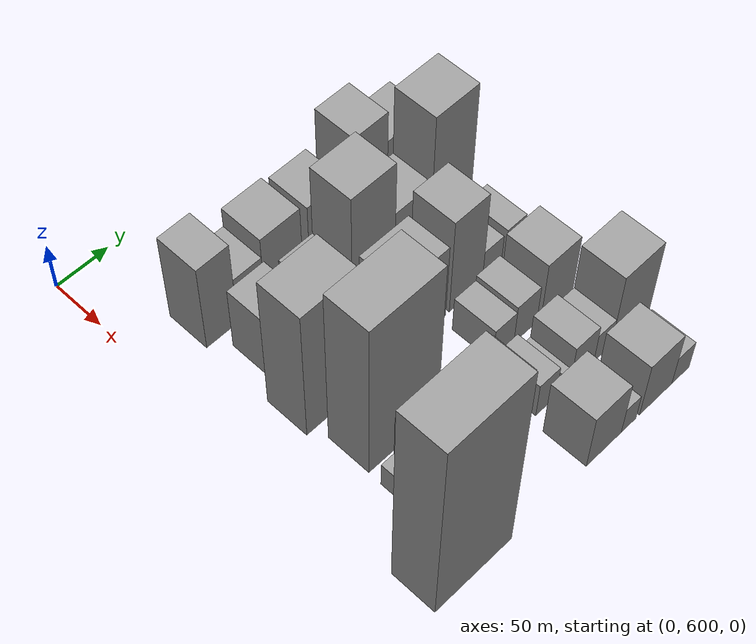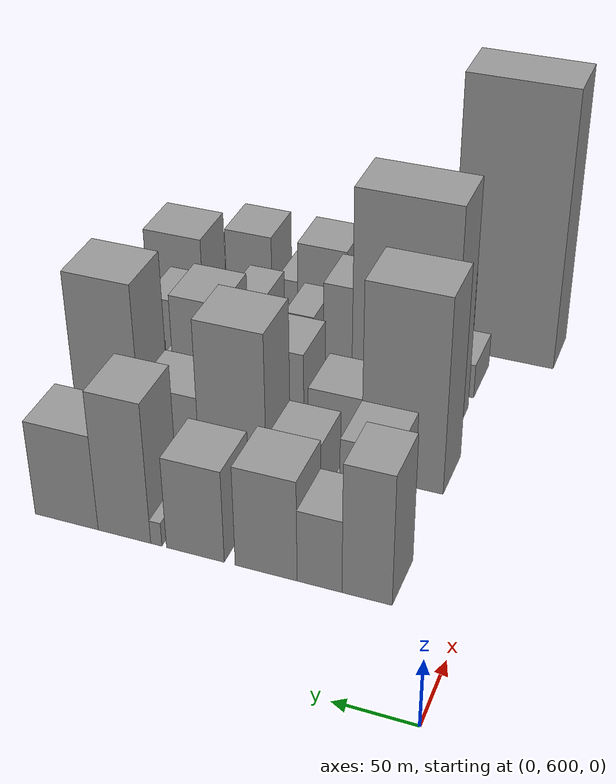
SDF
<sdf version="1.6">
 <world name="default">
  <model name="building_41">
   <static>1</static>
   <pose>100.0000 656.6407 0 0.000000 0.000000 0.000000</pose>
   <link name="link">
    <pose>0 0 48.00 0 0 0</pose>
    <collision name="collision"><geometry><box><size>40.0000 30.6110 96.0000</size></box></geometry></collision>
    <visual name="visual">
     <cast_shadows>0</cast_shadows>
     <geometry><box><size>40.0000 30.6110 96.0000</size></box></geometry>
     <material>
      <script>
       <uri>model://grey_wall/materials/scripts</uri>
       <uri>model://grey_wall/materials/textures</uri>
       <name>vrc/grey_wall</name>
      </script>
     </material>
    </visual>
   </link>
  </model>
  <model name="building_42">
   <static>1</static>
   <pose>100.0000 685.8209 0 0.000000 0.000000 0.000000</pose>
   <link name="link">
    <pose>0 0 27.00 0 0 0</pose>
    <collision name="collision"><geometry><box><size>40.0000 27.7494 54.0000</size></box></geometry></collision>
    <visual name="visual">
     <cast_shadows>0</cast_shadows>
     <geometry><box><size>40.0000 27.7494 54.0000</size></box></geometry>
     <material>
      <script>
       <uri>model://grey_wall/materials/scripts</uri>
       <uri>model://grey_wall/materials/textures</uri>
       <name>vrc/grey_wall</name>
      </script>
     </material>
    </visual>
   </link>
  </model>
  <model name="building_43">
   <static>1</static>
   <pose>100.0000 719.2941 0 0.000000 0.000000 0.000000</pose>
   <link name="link">
    <pose>0 0 37.50 0 0 0</pose>
    <collision name="collision"><geometry><box><size>40.0000 39.1970 75.0000</size></box></geometry></collision>
    <visual name="visual">
     <cast_shadows>0</cast_shadows>
     <geometry><box><size>40.0000 39.1970 75.0000</size></box></geometry>
     <material>
      <script>
       <uri>model://grey_wall/materials/scripts</uri>
       <uri>model://grey_wall/materials/textures</uri>
       <name>vrc/grey_wall</name>
      </script>
     </material>
    </visual>
   </link>
  </model>
  <model name="building_44">
   <static>1</static>
   <pose>100.0000 764.7186 0 0.000000 0.000000 0.000000</pose>
   <link name="link">
    <pose>0 0 34.50 0 0 0</pose>
    <collision name="collision"><geometry><box><size>40.0000 37.6518 69.0000</size></box></geometry></collision>
    <visual name="visual">
     <cast_shadows>0</cast_shadows>
     <geometry><box><size>40.0000 37.6518 69.0000</size></box></geometry>
     <material>
      <script>
       <uri>model://grey_wall/materials/scripts</uri>
       <uri>model://grey_wall/materials/textures</uri>
       <name>vrc/grey_wall</name>
      </script>
     </material>
    </visual>
   </link>
  </model>
  <model name="building_45">
   <static>1</static>
   <pose>100.0000 790.2598 0 0.000000 0.000000 0.000000</pose>
   <link name="link">
    <pose>0 0 9.00 0 0 0</pose>
    <collision name="collision"><geometry><box><size>40.0000 7.4306 18.0000</size></box></geometry></collision>
    <visual name="visual">
     <cast_shadows>0</cast_shadows>
     <geometry><box><size>40.0000 7.4306 18.0000</size></box></geometry>
     <material>
      <script>
       <uri>model://grey_wall/materials/scripts</uri>
       <uri>model://grey_wall/materials/textures</uri>
       <name>vrc/grey_wall</name>
      </script>
     </material>
    </visual>
   </link>
  </model>
  <model name="building_46">
   <static>1</static>
   <pose>100.0000 811.5840 0 0.000000 0.000000 0.000000</pose>
   <link name="link">
    <pose>0 0 52.50 0 0 0</pose>
    <collision name="collision"><geometry><box><size>40.0000 35.2179 105.0000</size></box></geometry></collision>
    <visual name="visual">
     <cast_shadows>0</cast_shadows>
     <geometry><box><size>40.0000 35.2179 105.0000</size></box></geometry>
     <material>
      <script>
       <uri>model://grey_wall/materials/scripts</uri>
       <uri>model://grey_wall/materials/textures</uri>
       <name>vrc/grey_wall</name>
      </script>
     </material>
    </visual>
   </link>
  </model>
  <model name="building_47">
   <static>1</static>
   <pose>100.0000 850.7482 0 0.000000 0.000000 0.000000</pose>
   <link name="link">
    <pose>0 0 36.00 0 0 0</pose>
    <collision name="collision"><geometry><box><size>40.0000 43.1106 72.0000</size></box></geometry></collision>
    <visual name="visual">
     <cast_shadows>0</cast_shadows>
     <geometry><box><size>40.0000 43.1106 72.0000</size></box></geometry>
     <material>
      <script>
       <uri>model://grey_wall/materials/scripts</uri>
       <uri>model://grey_wall/materials/textures</uri>
       <name>vrc/grey_wall</name>
      </script>
     </material>
    </visual>
   </link>
  </model>
  <model name="building_93">
   <static>1</static>
   <pose>152.0000 674.0964 0 0.000000 0.000000 0.000000</pose>
   <link name="link">
    <pose>0 0 34.50 0 0 0</pose>
    <collision name="collision"><geometry><box><size>40.0000 35.6775 69.0000</size></box></geometry></collision>
    <visual name="visual">
     <cast_shadows>0</cast_shadows>
     <geometry><box><size>40.0000 35.6775 69.0000</size></box></geometry>
     <material>
      <script>
       <uri>model://grey_wall/materials/scripts</uri>
       <uri>model://grey_wall/materials/textures</uri>
       <name>vrc/grey_wall</name>
      </script>
     </material>
    </visual>
   </link>
  </model>
  <model name="building_94">
   <static>1</static>
   <pose>152.0000 695.2115 0 0.000000 0.000000 0.000000</pose>
   <link name="link">
    <pose>0 0 7.50 0 0 0</pose>
    <collision name="collision"><geometry><box><size>40.0000 6.5528 15.0000</size></box></geometry></collision>
    <visual name="visual">
     <cast_shadows>0</cast_shadows>
     <geometry><box><size>40.0000 6.5528 15.0000</size></box></geometry>
     <material>
      <script>
       <uri>model://grey_wall/materials/scripts</uri>
       <uri>model://grey_wall/materials/textures</uri>
       <name>vrc/grey_wall</name>
      </script>
     </material>
    </visual>
   </link>
  </model>
  <model name="building_95">
   <static>1</static>
   <pose>152.0000 701.9124 0 0.000000 0.000000 0.000000</pose>
   <link name="link">
    <pose>0 0 7.50 0 0 0</pose>
    <collision name="collision"><geometry><box><size>40.0000 6.8491 15.0000</size></box></geometry></collision>
    <visual name="visual">
     <cast_shadows>0</cast_shadows>
     <geometry><box><size>40.0000 6.8491 15.0000</size></box></geometry>
     <material>
      <script>
       <uri>model://grey_wall/materials/scripts</uri>
       <uri>model://grey_wall/materials/textures</uri>
       <name>vrc/grey_wall</name>
      </script>
     </material>
    </visual>
   </link>
  </model>
  <model name="building_96">
   <static>1</static>
   <pose>152.0000 722.1935 0 0.000000 0.000000 0.000000</pose>
   <link name="link">
    <pose>0 0 28.50 0 0 0</pose>
    <collision name="collision"><geometry><box><size>40.0000 33.7131 57.0000</size></box></geometry></collision>
    <visual name="visual">
     <cast_shadows>0</cast_shadows>
     <geometry><box><size>40.0000 33.7131 57.0000</size></box></geometry>
     <material>
      <script>
       <uri>model://grey_wall/materials/scripts</uri>
       <uri>model://grey_wall/materials/textures</uri>
       <name>vrc/grey_wall</name>
      </script>
     </material>
    </visual>
   </link>
  </model>
  <model name="building_97">
   <static>1</static>
   <pose>152.0000 761.3562 0 0.000000 0.000000 0.000000</pose>
   <link name="link">
    <pose>0 0 66.00 0 0 0</pose>
    <collision name="collision"><geometry><box><size>40.0000 44.6124 132.0000</size></box></geometry></collision>
    <visual name="visual">
     <cast_shadows>0</cast_shadows>
     <geometry><box><size>40.0000 44.6124 132.0000</size></box></geometry>
     <material>
      <script>
       <uri>model://grey_wall/materials/scripts</uri>
       <uri>model://grey_wall/materials/textures</uri>
       <name>vrc/grey_wall</name>
      </script>
     </material>
    </visual>
   </link>
  </model>
  <model name="building_98">
   <static>1</static>
   <pose>152.0000 802.9893 0 0.000000 0.000000 0.000000</pose>
   <link name="link">
    <pose>0 0 37.50 0 0 0</pose>
    <collision name="collision"><geometry><box><size>40.0000 38.6537 75.0000</size></box></geometry></collision>
    <visual name="visual">
     <cast_shadows>0</cast_shadows>
     <geometry><box><size>40.0000 38.6537 75.0000</size></box></geometry>
     <material>
      <script>
       <uri>model://grey_wall/materials/scripts</uri>
       <uri>model://grey_wall/materials/textures</uri>
       <name>vrc/grey_wall</name>
      </script>
     </material>
    </visual>
   </link>
  </model>
  <model name="building_99">
   <static>1</static>
   <pose>152.0000 844.4540 0 0.000000 0.000000 0.000000</pose>
   <link name="link">
    <pose>0 0 73.50 0 0 0</pose>
    <collision name="collision"><geometry><box><size>40.0000 44.2758 147.0000</size></box></geometry></collision>
    <visual name="visual">
     <cast_shadows>0</cast_shadows>
     <geometry><box><size>40.0000 44.2758 147.0000</size></box></geometry>
     <material>
      <script>
       <uri>model://grey_wall/materials/scripts</uri>
       <uri>model://grey_wall/materials/textures</uri>
       <name>vrc/grey_wall</name>
      </script>
     </material>
    </visual>
   </link>
  </model>
  <model name="building_146">
   <static>1</static>
   <pose>204.0000 668.5517 0 0.000000 0.000000 0.000000</pose>
   <link name="link">
    <pose>0 0 73.50 0 0 0</pose>
    <collision name="collision"><geometry><box><size>40.0000 54.2176 147.0000</size></box></geometry></collision>
    <visual name="visual">
     <cast_shadows>0</cast_shadows>
     <geometry><box><size>40.0000 54.2176 147.0000</size></box></geometry>
     <material>
      <script>
       <uri>model://grey_wall/materials/scripts</uri>
       <uri>model://grey_wall/materials/textures</uri>
       <name>vrc/grey_wall</name>
      </script>
     </material>
    </visual>
   </link>
  </model>
  <model name="building_147">
   <static>1</static>
   <pose>204.0000 713.5334 0 0.000000 0.000000 0.000000</pose>
   <link name="link">
    <pose>0 0 30.00 0 0 0</pose>
    <collision name="collision"><geometry><box><size>40.0000 35.7460 60.0000</size></box></geometry></collision>
    <visual name="visual">
     <cast_shadows>0</cast_shadows>
     <geometry><box><size>40.0000 35.7460 60.0000</size></box></geometry>
     <material>
      <script>
       <uri>model://grey_wall/materials/scripts</uri>
       <uri>model://grey_wall/materials/textures</uri>
       <name>vrc/grey_wall</name>
      </script>
     </material>
    </visual>
   </link>
  </model>
  <model name="building_148">
   <static>1</static>
   <pose>204.0000 759.1979 0 0.000000 0.000000 0.000000</pose>
   <link name="link">
    <pose>0 0 42.00 0 0 0</pose>
    <collision name="collision"><geometry><box><size>40.0000 49.5830 84.0000</size></box></geometry></collision>
    <visual name="visual">
     <cast_shadows>0</cast_shadows>
     <geometry><box><size>40.0000 49.5830 84.0000</size></box></geometry>
     <material>
      <script>
       <uri>model://grey_wall/materials/scripts</uri>
       <uri>model://grey_wall/materials/textures</uri>
       <name>vrc/grey_wall</name>
      </script>
     </material>
    </visual>
   </link>
  </model>
  <model name="building_149">
   <static>1</static>
   <pose>204.0000 805.9090 0 0.000000 0.000000 0.000000</pose>
   <link name="link">
    <pose>0 0 54.00 0 0 0</pose>
    <collision name="collision"><geometry><box><size>40.0000 35.8390 108.0000</size></box></geometry></collision>
    <visual name="visual">
     <cast_shadows>0</cast_shadows>
     <geometry><box><size>40.0000 35.8390 108.0000</size></box></geometry>
     <material>
      <script>
       <uri>model://grey_wall/materials/scripts</uri>
       <uri>model://grey_wall/materials/textures</uri>
       <name>vrc/grey_wall</name>
      </script>
     </material>
    </visual>
   </link>
  </model>
  <model name="building_150">
   <static>1</static>
   <pose>204.0000 834.2644 0 0.000000 0.000000 0.000000</pose>
   <link name="link">
    <pose>0 0 19.50 0 0 0</pose>
    <collision name="collision"><geometry><box><size>40.0000 20.8718 39.0000</size></box></geometry></collision>
    <visual name="visual">
     <cast_shadows>0</cast_shadows>
     <geometry><box><size>40.0000 20.8718 39.0000</size></box></geometry>
     <material>
      <script>
       <uri>model://grey_wall/materials/scripts</uri>
       <uri>model://grey_wall/materials/textures</uri>
       <name>vrc/grey_wall</name>
      </script>
     </material>
    </visual>
   </link>
  </model>
  <model name="building_151">
   <static>1</static>
   <pose>204.0000 859.2521 0 0.000000 0.000000 0.000000</pose>
   <link name="link">
    <pose>0 0 21.00 0 0 0</pose>
    <collision name="collision"><geometry><box><size>40.0000 21.1034 42.0000</size></box></geometry></collision>
    <visual name="visual">
     <cast_shadows>0</cast_shadows>
     <geometry><box><size>40.0000 21.1034 42.0000</size></box></geometry>
     <material>
      <script>
       <uri>model://grey_wall/materials/scripts</uri>
       <uri>model://grey_wall/materials/textures</uri>
       <name>vrc/grey_wall</name>
      </script>
     </material>
    </visual>
   </link>
  </model>
  <model name="building_196">
   <static>1</static>
   <pose>256.0000 685.6566 0 0.000000 0.000000 0.000000</pose>
   <link name="link">
    <pose>0 0 88.50 0 0 0</pose>
    <collision name="collision"><geometry><box><size>40.0000 69.6027 177.0000</size></box></geometry></collision>
    <visual name="visual">
     <cast_shadows>0</cast_shadows>
     <geometry><box><size>40.0000 69.6027 177.0000</size></box></geometry>
     <material>
      <script>
       <uri>model://grey_wall/materials/scripts</uri>
       <uri>model://grey_wall/materials/textures</uri>
       <name>vrc/grey_wall</name>
      </script>
     </material>
    </visual>
   </link>
  </model>
  <model name="building_197">
   <static>1</static>
   <pose>256.0000 789.6797 0 0.000000 0.000000 0.000000</pose>
   <link name="link">
    <pose>0 0 19.50 0 0 0</pose>
    <collision name="collision"><geometry><box><size>40.0000 22.8145 39.0000</size></box></geometry></collision>
    <visual name="visual">
     <cast_shadows>0</cast_shadows>
     <geometry><box><size>40.0000 22.8145 39.0000</size></box></geometry>
     <material>
      <script>
       <uri>model://grey_wall/materials/scripts</uri>
       <uri>model://grey_wall/materials/textures</uri>
       <name>vrc/grey_wall</name>
      </script>
     </material>
    </visual>
   </link>
  </model>
  <model name="building_198">
   <static>1</static>
   <pose>256.0000 813.6329 0 0.000000 0.000000 0.000000</pose>
   <link name="link">
    <pose>0 0 22.50 0 0 0</pose>
    <collision name="collision"><geometry><box><size>40.0000 25.0918 45.0000</size></box></geometry></collision>
    <visual name="visual">
     <cast_shadows>0</cast_shadows>
     <geometry><box><size>40.0000 25.0918 45.0000</size></box></geometry>
     <material>
      <script>
       <uri>model://grey_wall/materials/scripts</uri>
       <uri>model://grey_wall/materials/textures</uri>
       <name>vrc/grey_wall</name>
      </script>
     </material>
    </visual>
   </link>
  </model>
  <model name="building_199">
   <static>1</static>
   <pose>256.0000 849.0650 0 0.000000 0.000000 0.000000</pose>
   <link name="link">
    <pose>0 0 33.00 0 0 0</pose>
    <collision name="collision"><geometry><box><size>40.0000 35.7724 66.0000</size></box></geometry></collision>
    <visual name="visual">
     <cast_shadows>0</cast_shadows>
     <geometry><box><size>40.0000 35.7724 66.0000</size></box></geometry>
     <material>
      <script>
       <uri>model://grey_wall/materials/scripts</uri>
       <uri>model://grey_wall/materials/textures</uri>
       <name>vrc/grey_wall</name>
      </script>
     </material>
    </visual>
   </link>
  </model>
  <model name="building_243">
   <static>1</static>
   <pose>308.0000 656.5839 0 0.000000 0.000000 0.000000</pose>
   <link name="link">
    <pose>0 0 13.50 0 0 0</pose>
    <collision name="collision"><geometry><box><size>40.0000 12.5324 27.0000</size></box></geometry></collision>
    <visual name="visual">
     <cast_shadows>0</cast_shadows>
     <geometry><box><size>40.0000 12.5324 27.0000</size></box></geometry>
     <material>
      <script>
       <uri>model://grey_wall/materials/scripts</uri>
       <uri>model://grey_wall/materials/textures</uri>
       <name>vrc/grey_wall</name>
      </script>
     </material>
    </visual>
   </link>
  </model>
  <model name="building_244">
   <static>1</static>
   <pose>308.0000 683.9909 0 0.000000 0.000000 0.000000</pose>
   <link name="link">
    <pose>0 0 37.50 0 0 0</pose>
    <collision name="collision"><geometry><box><size>40.0000 42.2815 75.0000</size></box></geometry></collision>
    <visual name="visual">
     <cast_shadows>0</cast_shadows>
     <geometry><box><size>40.0000 42.2815 75.0000</size></box></geometry>
     <material>
      <script>
       <uri>model://grey_wall/materials/scripts</uri>
       <uri>model://grey_wall/materials/textures</uri>
       <name>vrc/grey_wall</name>
      </script>
     </material>
    </visual>
   </link>
  </model>
  <model name="building_245">
   <static>1</static>
   <pose>308.0000 710.4468 0 0.000000 0.000000 0.000000</pose>
   <link name="link">
    <pose>0 0 12.00 0 0 0</pose>
    <collision name="collision"><geometry><box><size>40.0000 10.6301 24.0000</size></box></geometry></collision>
    <visual name="visual">
     <cast_shadows>0</cast_shadows>
     <geometry><box><size>40.0000 10.6301 24.0000</size></box></geometry>
     <material>
      <script>
       <uri>model://grey_wall/materials/scripts</uri>
       <uri>model://grey_wall/materials/textures</uri>
       <name>vrc/grey_wall</name>
      </script>
     </material>
    </visual>
   </link>
  </model>
  <model name="building_246">
   <static>1</static>
   <pose>308.0000 738.9353 0 0.000000 0.000000 0.000000</pose>
   <link name="link">
    <pose>0 0 34.50 0 0 0</pose>
    <collision name="collision"><geometry><box><size>40.0000 40.3470 69.0000</size></box></geometry></collision>
    <visual name="visual">
     <cast_shadows>0</cast_shadows>
     <geometry><box><size>40.0000 40.3470 69.0000</size></box></geometry>
     <material>
      <script>
       <uri>model://grey_wall/materials/scripts</uri>
       <uri>model://grey_wall/materials/textures</uri>
       <name>vrc/grey_wall</name>
      </script>
     </material>
    </visual>
   </link>
  </model>
  <model name="building_247">
   <static>1</static>
   <pose>308.0000 776.9522 0 0.000000 0.000000 0.000000</pose>
   <link name="link">
    <pose>0 0 19.50 0 0 0</pose>
    <collision name="collision"><geometry><box><size>40.0000 21.6867 39.0000</size></box></geometry></collision>
    <visual name="visual">
     <cast_shadows>0</cast_shadows>
     <geometry><box><size>40.0000 21.6867 39.0000</size></box></geometry>
     <material>
      <script>
       <uri>model://grey_wall/materials/scripts</uri>
       <uri>model://grey_wall/materials/textures</uri>
       <name>vrc/grey_wall</name>
      </script>
     </material>
    </visual>
   </link>
  </model>
  <model name="building_248">
   <static>1</static>
   <pose>308.0000 799.7443 0 0.000000 0.000000 0.000000</pose>
   <link name="link">
    <pose>0 0 9.00 0 0 0</pose>
    <collision name="collision"><geometry><box><size>40.0000 7.8976 18.0000</size></box></geometry></collision>
    <visual name="visual">
     <cast_shadows>0</cast_shadows>
     <geometry><box><size>40.0000 7.8976 18.0000</size></box></geometry>
     <material>
      <script>
       <uri>model://grey_wall/materials/scripts</uri>
       <uri>model://grey_wall/materials/textures</uri>
       <name>vrc/grey_wall</name>
      </script>
     </material>
    </visual>
   </link>
  </model>
  <model name="building_249">
   <static>1</static>
   <pose>308.0000 816.6776 0 0.000000 0.000000 0.000000</pose>
   <link name="link">
    <pose>0 0 22.50 0 0 0</pose>
    <collision name="collision"><geometry><box><size>40.0000 25.9689 45.0000</size></box></geometry></collision>
    <visual name="visual">
     <cast_shadows>0</cast_shadows>
     <geometry><box><size>40.0000 25.9689 45.0000</size></box></geometry>
     <material>
      <script>
       <uri>model://grey_wall/materials/scripts</uri>
       <uri>model://grey_wall/materials/textures</uri>
       <name>vrc/grey_wall</name>
      </script>
     </material>
    </visual>
   </link>
  </model>
  <model name="building_250">
   <static>1</static>
   <pose>308.0000 839.5619 0 0.000000 0.000000 0.000000</pose>
   <link name="link">
    <pose>0 0 16.50 0 0 0</pose>
    <collision name="collision"><geometry><box><size>40.0000 19.7997 33.0000</size></box></geometry></collision>
    <visual name="visual">
     <cast_shadows>0</cast_shadows>
     <geometry><box><size>40.0000 19.7997 33.0000</size></box></geometry>
     <material>
      <script>
       <uri>model://grey_wall/materials/scripts</uri>
       <uri>model://grey_wall/materials/textures</uri>
       <name>vrc/grey_wall</name>
      </script>
     </material>
    </visual>
   </link>
  </model>
  <model name="building_251">
   <static>1</static>
   <pose>308.0000 871.0681 0 0.000000 0.000000 0.000000</pose>
   <link name="link">
    <pose>0 0 42.00 0 0 0</pose>
    <collision name="collision"><geometry><box><size>40.0000 43.2126 84.0000</size></box></geometry></collision>
    <visual name="visual">
     <cast_shadows>0</cast_shadows>
     <geometry><box><size>40.0000 43.2126 84.0000</size></box></geometry>
     <material>
      <script>
       <uri>model://grey_wall/materials/scripts</uri>
       <uri>model://grey_wall/materials/textures</uri>
       <name>vrc/grey_wall</name>
      </script>
     </material>
    </visual>
   </link>
  </model>
  <model name="building_298">
   <static>1</static>
   <pose>360.0000 644.7817 0 0.000000 0.000000 0.000000</pose>
   <link name="link">
    <pose>0 0 106.50 0 0 0</pose>
    <collision name="collision"><geometry><box><size>40.0000 75.3659 213.0000</size></box></geometry></collision>
    <visual name="visual">
     <cast_shadows>0</cast_shadows>
     <geometry><box><size>40.0000 75.3659 213.0000</size></box></geometry>
     <material>
      <script>
       <uri>model://grey_wall/materials/scripts</uri>
       <uri>model://grey_wall/materials/textures</uri>
       <name>vrc/grey_wall</name>
      </script>
     </material>
    </visual>
   </link>
  </model>
  <model name="building_299">
   <static>1</static>
   <pose>360.0000 779.0771 0 0.000000 0.000000 0.000000</pose>
   <link name="link">
    <pose>0 0 31.50 0 0 0</pose>
    <collision name="collision"><geometry><box><size>40.0000 37.7416 63.0000</size></box></geometry></collision>
    <visual name="visual">
     <cast_shadows>0</cast_shadows>
     <geometry><box><size>40.0000 37.7416 63.0000</size></box></geometry>
     <material>
      <script>
       <uri>model://grey_wall/materials/scripts</uri>
       <uri>model://grey_wall/materials/textures</uri>
       <name>vrc/grey_wall</name>
      </script>
     </material>
    </visual>
   </link>
  </model>
  <model name="building_300">
   <static>1</static>
   <pose>360.0000 806.0297 0 0.000000 0.000000 0.000000</pose>
   <link name="link">
    <pose>0 0 15.00 0 0 0</pose>
    <collision name="collision"><geometry><box><size>40.0000 16.1636 30.0000</size></box></geometry></collision>
    <visual name="visual">
     <cast_shadows>0</cast_shadows>
     <geometry><box><size>40.0000 16.1636 30.0000</size></box></geometry>
     <material>
      <script>
       <uri>model://grey_wall/materials/scripts</uri>
       <uri>model://grey_wall/materials/textures</uri>
       <name>vrc/grey_wall</name>
      </script>
     </material>
    </visual>
   </link>
  </model>
  <model name="building_301">
   <static>1</static>
   <pose>360.0000 836.2046 0 0.000000 0.000000 0.000000</pose>
   <link name="link">
    <pose>0 0 31.50 0 0 0</pose>
    <collision name="collision"><geometry><box><size>40.0000 36.1862 63.0000</size></box></geometry></collision>
    <visual name="visual">
     <cast_shadows>0</cast_shadows>
     <geometry><box><size>40.0000 36.1862 63.0000</size></box></geometry>
     <material>
      <script>
       <uri>model://grey_wall/materials/scripts</uri>
       <uri>model://grey_wall/materials/textures</uri>
       <name>vrc/grey_wall</name>
      </script>
     </material>
    </visual>
   </link>
  </model>
  <model name="building_302">
   <static>1</static>
   <pose>360.0000 864.1430 0 0.000000 0.000000 0.000000</pose>
   <link name="link">
    <pose>0 0 16.50 0 0 0</pose>
    <collision name="collision"><geometry><box><size>40.0000 19.6906 33.0000</size></box></geometry></collision>
    <visual name="visual">
     <cast_shadows>0</cast_shadows>
     <geometry><box><size>40.0000 19.6906 33.0000</size></box></geometry>
     <material>
      <script>
       <uri>model://grey_wall/materials/scripts</uri>
       <uri>model://grey_wall/materials/textures</uri>
       <name>vrc/grey_wall</name>
      </script>
     </material>
    </visual>
   </link>
  </model>
 </world>
</sdf>
